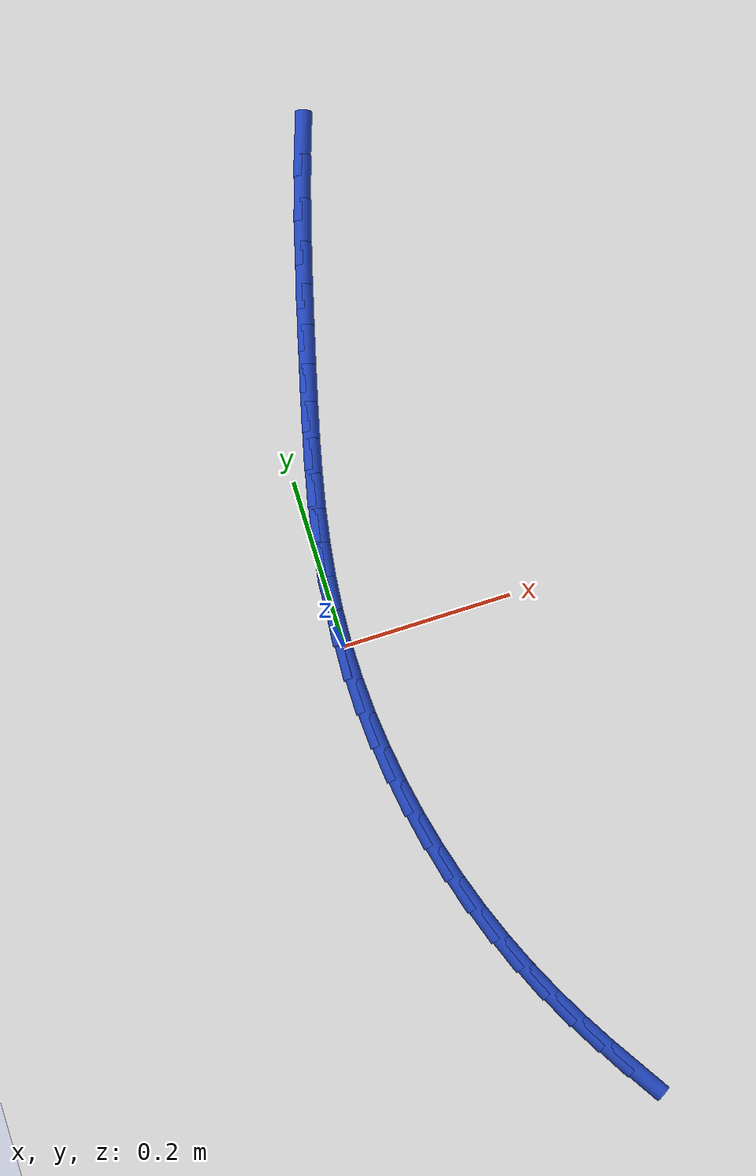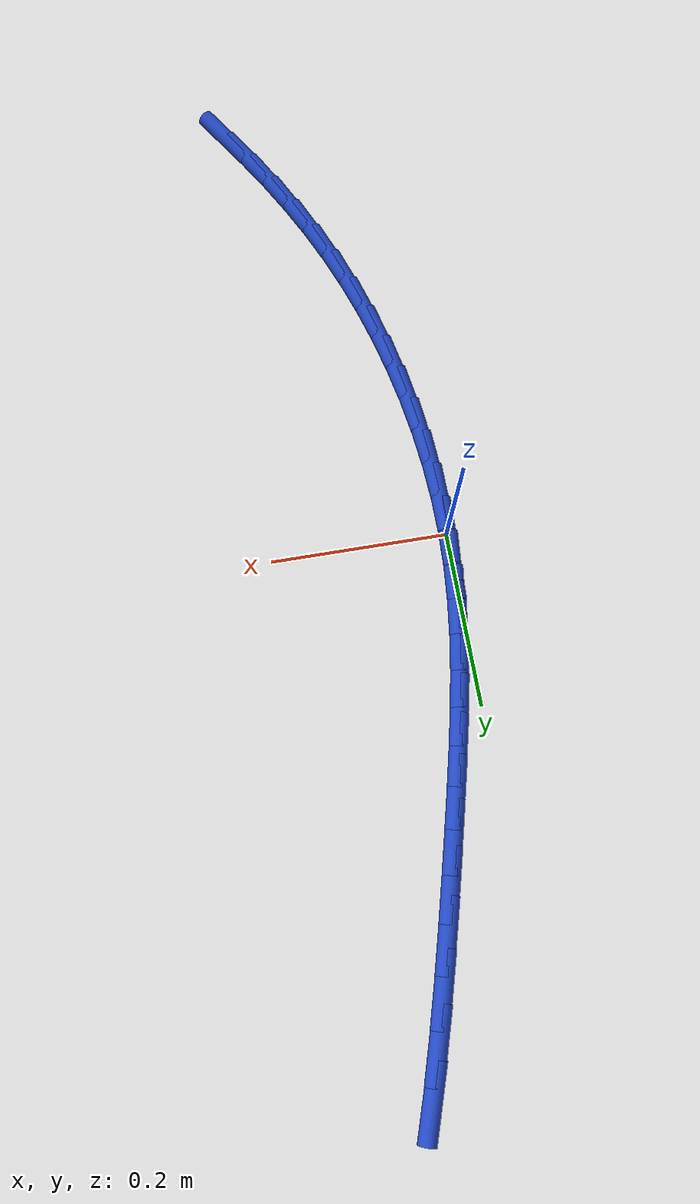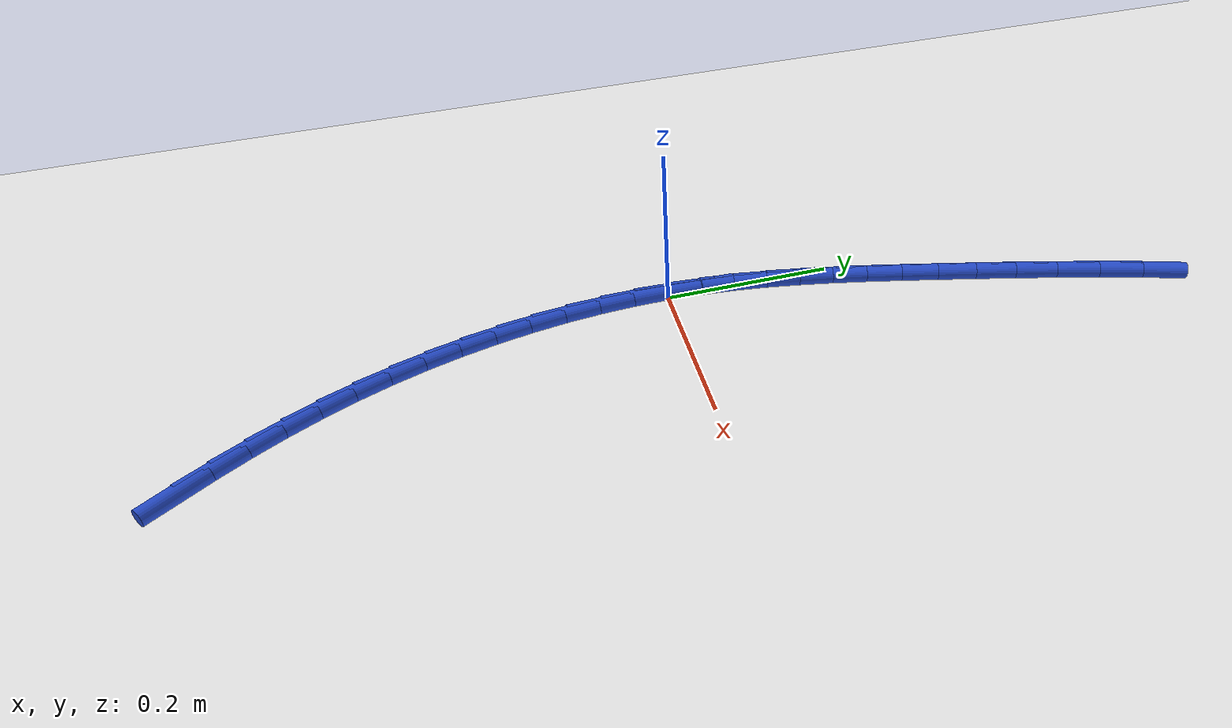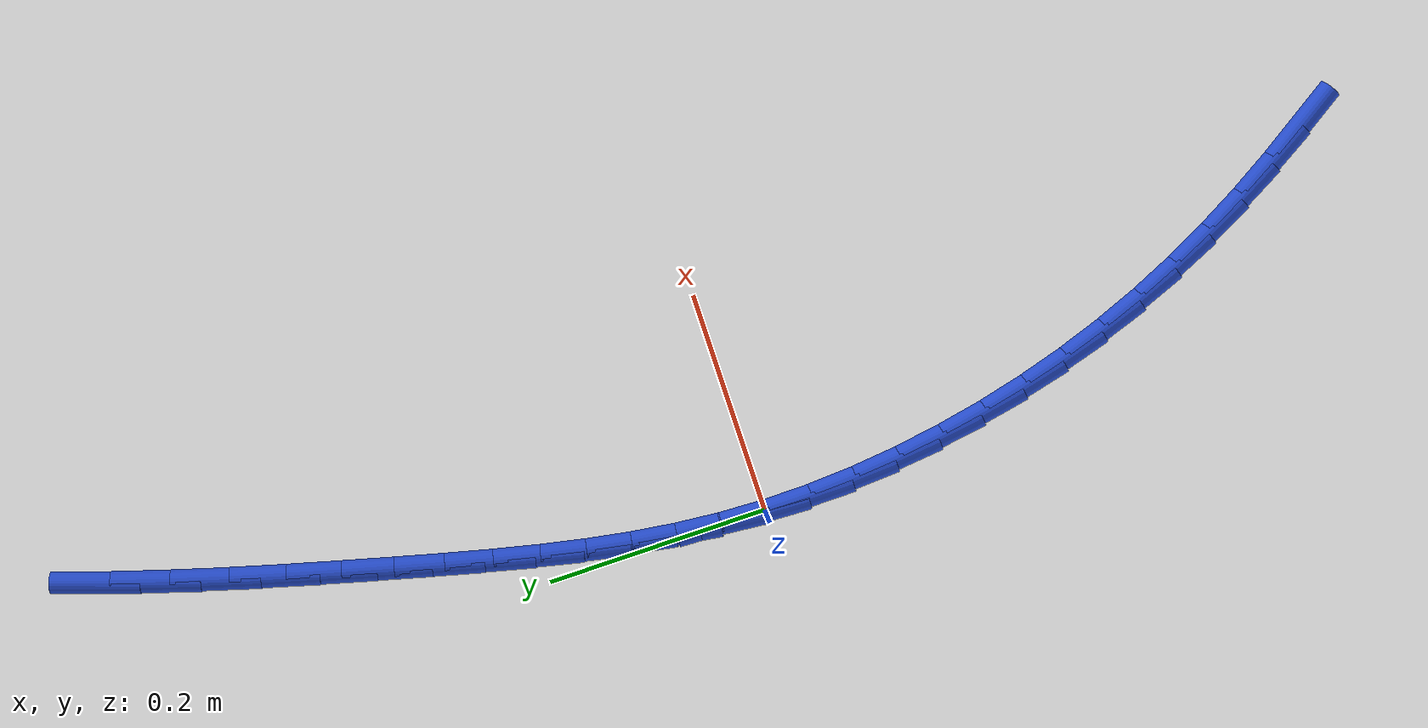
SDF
<sdf version="1.6">
 <world name="default">
  <model name="ground_plane">
   <static>1</static>
   <link name="link">
    <collision name="collision">
     <geometry><plane><normal>0 0 1</normal><size>100 100</size></plane></geometry>
     <surface><friction><ode><mu>100</mu><mu2>50</mu2></ode></friction></surface>
    </collision>
    <visual name="visual">
     <cast_shadows>0</cast_shadows>
     <geometry><plane><normal>0 0 1</normal><size>100 100</size></plane></geometry>
     <material>
      <script><uri>file://media/materials/scripts/gazebo.material</uri><name>Gazebo/WhiteGlow</name></script>
     </material>
    </visual>
   </link>
  </model>
  <model name="line">
   <link name="link_0">
    <pose>-1.734723475976807e-18 -4.85722573273506e-17 0.01 0 1.57 1.528370388708105</pose>
    <collision name="collision">
     <geometry><cylinder><radius>0.01</radius><length>0.08</length></cylinder></geometry>
    </collision>
    <visual name="visual">
     <material>
      <script><name>Gazebo/Blue</name><uri>file://media/materials/scripts/gazebo.material</uri></script>
     </material>
     <geometry><cylinder><radius>0.01</radius><length>0.08</length></cylinder></geometry>
    </visual>
   </link>
   <link name="link_1">
    <pose>0.00172003753674495 0.040517793847105354 0.01 0 1.57 1.480477401472173</pose>
    <collision name="collision">
     <geometry><cylinder><radius>0.01</radius><length>0.08</length></cylinder></geometry>
    </collision>
    <visual name="visual">
     <material>
      <script><name>Gazebo/Blue</name><uri>file://media/materials/scripts/gazebo.material</uri></script>
     </material>
     <geometry><cylinder><radius>0.01</radius><length>0.08</length></cylinder></geometry>
    </visual>
   </link>
   <link name="link_2">
    <pose>0.0053483399748782134 0.08058061663351242 0.01 0 1.57 1.4373348506060561</pose>
    <collision name="collision">
     <geometry><cylinder><radius>0.01</radius><length>0.08</length></cylinder></geometry>
    </collision>
    <visual name="visual">
     <material>
      <script><name>Gazebo/Blue</name><uri>file://media/materials/scripts/gazebo.material</uri></script>
     </material>
     <geometry><cylinder><radius>0.01</radius><length>0.08</length></cylinder></geometry>
    </visual>
   </link>
   <link name="link_3">
    <pose>0.010715270375678139 0.1205549032725496 0.01 0 1.57 1.4001602886996463</pose>
    <collision name="collision">
     <geometry><cylinder><radius>0.01</radius><length>0.08</length></cylinder></geometry>
    </collision>
    <visual name="visual">
     <material>
      <script><name>Gazebo/Blue</name><uri>file://media/materials/scripts/gazebo.material</uri></script>
     </material>
     <geometry><cylinder><radius>0.01</radius><length>0.08</length></cylinder></geometry>
    </visual>
   </link>
   <link name="link_4">
    <pose>0.01765119180042307 0.1608070886775455 0.01 0 1.57 1.3697363426582096</pose>
    <collision name="collision">
     <geometry><cylinder><radius>0.01</radius><length>0.08</length></cylinder></geometry>
    </collision>
    <visual name="visual">
     <material>
      <script><name>Gazebo/Blue</name><uri>file://media/materials/scripts/gazebo.material</uri></script>
     </material>
     <geometry><cylinder><radius>0.01</radius><length>0.08</length></cylinder></geometry>
    </visual>
   </link>
   <link name="link_5">
    <pose>0.025986467310391337 0.2017036077618285 0.01 0 1.57 1.3463984910136473</pose>
    <collision name="collision">
     <geometry><cylinder><radius>0.01</radius><length>0.08</length></cylinder></geometry>
    </collision>
    <visual name="visual">
     <material>
      <script><name>Gazebo/Blue</name><uri>file://media/materials/scripts/gazebo.material</uri></script>
     </material>
     <geometry><cylinder><radius>0.01</radius><length>0.08</length></cylinder></geometry>
    </visual>
   </link>
   <link name="link_6">
    <pose>0.035551459966861286 0.2436108954387271 0.01 0 1.57 1.3300850885852846</pose>
    <collision name="collision">
     <geometry><cylinder><radius>0.01</radius><length>0.08</length></cylinder></geometry>
    </collision>
    <visual name="visual">
     <material>
      <script><name>Gazebo/Blue</name><uri>file://media/materials/scripts/gazebo.material</uri></script>
     </material>
     <geometry><cylinder><radius>0.01</radius><length>0.08</length></cylinder></geometry>
    </visual>
   </link>
   <link name="link_7">
    <pose>0.04617653283111127 0.28689538662156994 0.01 0 1.57 1.3204221853887352</pose>
    <collision name="collision">
     <geometry><cylinder><radius>0.01</radius><length>0.08</length></cylinder></geometry>
    </collision>
    <visual name="visual">
     <material>
      <script><name>Gazebo/Blue</name><uri>file://media/materials/scripts/gazebo.material</uri></script>
     </material>
     <geometry><cylinder><radius>0.01</radius><length>0.08</length></cylinder></geometry>
    </visual>
   </link>
   <link name="link_8">
    <pose>0.05769204896441961 0.3319235162236853 0.01 0 1.57 1.3160238211613218</pose>
    <collision name="collision">
     <geometry><cylinder><radius>0.01</radius><length>0.08</length></cylinder></geometry>
    </collision>
    <visual name="visual">
     <material>
      <script><name>Gazebo/Blue</name><uri>file://media/materials/scripts/gazebo.material</uri></script>
     </material>
     <geometry><cylinder><radius>0.01</radius><length>0.08</length></cylinder></geometry>
    </visual>
   </link>
   <link name="link_9">
    <pose>0.06994969291257157 0.378990127860714 0.01 0 1.57 1.3102897392908057</pose>
    <collision name="collision">
     <geometry><cylinder><radius>0.01</radius><length>0.08</length></cylinder></geometry>
    </collision>
    <visual name="visual">
     <material>
      <script><name>Gazebo/Blue</name><uri>file://media/materials/scripts/gazebo.material</uri></script>
     </material>
     <geometry><cylinder><radius>0.01</radius><length>0.08</length></cylinder></geometry>
    </visual>
   </link>
   <link name="link_10">
    <pose>0.08296831745633551 0.4278287631962327 0.01 0 1.57 1.3004733944327602</pose>
    <collision name="collision">
     <geometry><cylinder><radius>0.01</radius><length>0.08</length></cylinder></geometry>
    </collision>
    <visual name="visual">
     <material>
      <script><name>Gazebo/Blue</name><uri>file://media/materials/scripts/gazebo.material</uri></script>
     </material>
     <geometry><cylinder><radius>0.01</radius><length>0.08</length></cylinder></geometry>
    </visual>
   </link>
   <link name="link_11">
    <pose>0.09684562465601698 0.47790821111630843 0.01 0 1.57 1.2866186862908935</pose>
    <collision name="collision">
     <geometry><cylinder><radius>0.01</radius><length>0.08</length></cylinder></geometry>
    </collision>
    <visual name="visual">
     <material>
      <script><name>Gazebo/Blue</name><uri>file://media/materials/scripts/gazebo.material</uri></script>
     </material>
     <geometry><cylinder><radius>0.01</radius><length>0.08</length></cylinder></geometry>
    </visual>
   </link>
   <link name="link_12">
    <pose>0.11167978077608409 0.5286957018454448 0.01 0 1.57 1.2685675212239707</pose>
    <collision name="collision">
     <geometry><cylinder><radius>0.01</radius><length>0.08</length></cylinder></geometry>
    </collision>
    <visual name="visual">
     <material>
      <script><name>Gazebo/Blue</name><uri>file://media/materials/scripts/gazebo.material</uri></script>
     </material>
     <geometry><cylinder><radius>0.01</radius><length>0.08</length></cylinder></geometry>
    </visual>
   </link>
   <link name="link_13">
    <pose>0.127568952081005 0.5796584656081453 0.01 0 1.57 1.2459556664759364</pose>
    <collision name="collision">
     <geometry><cylinder><radius>0.01</radius><length>0.08</length></cylinder></geometry>
    </collision>
    <visual name="visual">
     <material>
      <script><name>Gazebo/Blue</name><uri>file://media/materials/scripts/gazebo.material</uri></script>
     </material>
     <geometry><cylinder><radius>0.01</radius><length>0.08</length></cylinder></geometry>
    </visual>
   </link>
   <link name="link_166">
    <pose>0.17278765813214683 -0.5573662762943857 0.01 0 1.57 -0.998845805385104</pose>
    <collision name="collision">
     <geometry><cylinder><radius>0.01</radius><length>0.08</length></cylinder></geometry>
    </collision>
    <visual name="visual">
     <material>
      <script><name>Gazebo/Blue</name><uri>file://media/materials/scripts/gazebo.material</uri></script>
     </material>
     <geometry><cylinder><radius>0.01</radius><length>0.08</length></cylinder></geometry>
    </visual>
   </link>
   <link name="link_167">
    <pose>0.14984369439331982 -0.5217237211053647 0.01 0 1.57 -1.0328026099819858</pose>
    <collision name="collision">
     <geometry><cylinder><radius>0.01</radius><length>0.08</length></cylinder></geometry>
    </collision>
    <visual name="visual">
     <material>
      <script><name>Gazebo/Blue</name><uri>file://media/materials/scripts/gazebo.material</uri></script>
     </material>
     <geometry><cylinder><radius>0.01</radius><length>0.08</length></cylinder></geometry>
    </visual>
   </link>
   <link name="link_168">
    <pose>0.12826615076910017 -0.48556260717387384 0.01 0 1.57 -1.0701027501707252</pose>
    <collision name="collision">
     <geometry><cylinder><radius>0.01</radius><length>0.08</length></cylinder></geometry>
    </collision>
    <visual name="visual">
     <material>
      <script><name>Gazebo/Blue</name><uri>file://media/materials/scripts/gazebo.material</uri></script>
     </material>
     <geometry><cylinder><radius>0.01</radius><length>0.08</length></cylinder></geometry>
    </visual>
   </link>
   <link name="link_169">
    <pose>0.10812887845180856 -0.44876226530600816 0.01 0 1.57 -1.1104976194288296</pose>
    <collision name="collision">
     <geometry><cylinder><radius>0.01</radius><length>0.08</length></cylinder></geometry>
    </collision>
    <visual name="visual">
     <material>
      <script><name>Gazebo/Blue</name><uri>file://media/materials/scripts/gazebo.material</uri></script>
     </material>
     <geometry><cylinder><radius>0.01</radius><length>0.08</length></cylinder></geometry>
    </visual>
   </link>
   <link name="link_170">
    <pose>0.08950572863376506 -0.4112020263078616 0.01 0 1.57 -1.1536505468433074</pose>
    <collision name="collision">
     <geometry><cylinder><radius>0.01</radius><length>0.08</length></cylinder></geometry>
    </collision>
    <visual name="visual">
     <material>
      <script><name>Gazebo/Blue</name><uri>file://media/materials/scripts/gazebo.material</uri></script>
     </material>
     <geometry><cylinder><radius>0.01</radius><length>0.08</length></cylinder></geometry>
    </visual>
   </link>
   <link name="link_171">
    <pose>0.07247055250729091 -0.3727612209855305 0.01 0 1.57 -1.1991328929459468</pose>
    <collision name="collision">
     <geometry><cylinder><radius>0.01</radius><length>0.08</length></cylinder></geometry>
    </collision>
    <visual name="visual">
     <material>
      <script><name>Gazebo/Blue</name><uri>file://media/materials/scripts/gazebo.material</uri></script>
     </material>
     <geometry><cylinder><radius>0.01</radius><length>0.08</length></cylinder></geometry>
    </visual>
   </link>
   <link name="link_172">
    <pose>0.0570971488340753 -0.33331979363286135 0.01 0 1.57 -1.245473615800154</pose>
    <collision name="collision">
     <geometry><cylinder><radius>0.01</radius><length>0.08</length></cylinder></geometry>
    </collision>
    <visual name="visual">
     <material>
      <script><name>Gazebo/Blue</name><uri>file://media/materials/scripts/gazebo.material</uri></script>
     </material>
     <geometry><cylinder><radius>0.01</radius><length>0.08</length></cylinder></geometry>
    </visual>
   </link>
   <link name="link_173">
    <pose>0.043450410558475955 -0.29286189499245974 0.01 0 1.57 -1.2906419546688646</pose>
    <collision name="collision">
     <geometry><cylinder><radius>0.01</radius><length>0.08</length></cylinder></geometry>
    </collision>
    <visual name="visual">
     <material>
      <script><name>Gazebo/Blue</name><uri>file://media/materials/scripts/gazebo.material</uri></script>
     </material>
     <geometry><cylinder><radius>0.01</radius><length>0.08</length></cylinder></geometry>
    </visual>
   </link>
   <link name="link_174">
    <pose>0.0315763494153686 -0.25159260373696507 0.01 0 1.57 -1.3349260501769045</pose>
    <collision name="collision">
     <geometry><cylinder><radius>0.01</radius><length>0.08</length></cylinder></geometry>
    </collision>
    <visual name="visual">
     <material>
      <script><name>Gazebo/Blue</name><uri>file://media/materials/scripts/gazebo.material</uri></script>
     </material>
     <geometry><cylinder><radius>0.01</radius><length>0.08</length></cylinder></geometry>
    </visual>
   </link>
   <link name="link_175">
    <pose>0.021518568934412934 -0.2097451768076801 0.01 0 1.57 -1.378889064522511</pose>
    <collision name="collision">
     <geometry><cylinder><radius>0.01</radius><length>0.08</length></cylinder></geometry>
    </collision>
    <visual name="visual">
     <material>
      <script><name>Gazebo/Blue</name><uri>file://media/materials/scripts/gazebo.material</uri></script>
     </material>
     <geometry><cylinder><radius>0.01</radius><length>0.08</length></cylinder></geometry>
    </visual>
   </link>
   <link name="link_176">
    <pose>0.013320672645268537 -0.1675528711459068 0.01 0 1.57 -1.4230897962535616</pose>
    <collision name="collision">
     <geometry><cylinder><radius>0.01</radius><length>0.08</length></cylinder></geometry>
    </collision>
    <visual name="visual">
     <material>
      <script><name>Gazebo/Blue</name><uri>file://media/materials/scripts/gazebo.material</uri></script>
     </material>
     <geometry><cylinder><radius>0.01</radius><length>0.08</length></cylinder></geometry>
    </visual>
   </link>
   <link name="link_177">
    <pose>0.0070262640775954534 -0.12524894369294992 0.01 0 1.57 -1.4680986572761336</pose>
    <collision name="collision">
     <geometry><cylinder><radius>0.01</radius><length>0.08</length></cylinder></geometry>
    </collision>
    <visual name="visual">
     <material>
      <script><name>Gazebo/Blue</name><uri>file://media/materials/scripts/gazebo.material</uri></script>
     </material>
     <geometry><cylinder><radius>0.01</radius><length>0.08</length></cylinder></geometry>
    </visual>
   </link>
   <link name="link_178">
    <pose>0.0026789467610531924 -0.08306665139011124 0.01 0 1.57 -1.5145142327414138</pose>
    <collision name="collision">
     <geometry><cylinder><radius>0.01</radius><length>0.08</length></cylinder></geometry>
    </collision>
    <visual name="visual">
     <material>
      <script><name>Gazebo/Blue</name><uri>file://media/materials/scripts/gazebo.material</uri></script>
     </material>
     <geometry><cylinder><radius>0.01</radius><length>0.08</length></cylinder></geometry>
    </visual>
   </link>
   <link name="link_179">
    <pose>0.00032232422530147856 -0.04123925117869376 0.01 0 1.57 -1.5629805286700231</pose>
    <collision name="collision">
     <geometry><cylinder><radius>0.01</radius><length>0.08</length></cylinder></geometry>
    </collision>
    <visual name="visual">
     <material>
      <script><name>Gazebo/Blue</name><uri>file://media/materials/scripts/gazebo.material</uri></script>
     </material>
     <geometry><cylinder><radius>0.01</radius><length>0.08</length></cylinder></geometry>
    </visual>
   </link>
   <link name="link_180">
    <pose>1.0408340855860843e-17 -2.636779683484747e-16 0.01 0 1.57 1.5273879067173797</pose>
    <collision name="collision">
     <geometry><cylinder><radius>0.01</radius><length>0.08</length></cylinder></geometry>
    </collision>
    <visual name="visual">
     <material>
      <script><name>Gazebo/Blue</name><uri>file://media/materials/scripts/gazebo.material</uri></script>
     </material>
     <geometry><cylinder><radius>0.01</radius><length>0.08</length></cylinder></geometry>
    </visual>
   </link>
   <link name="link_181">
    <pose>0.0017555776148085005 0.04041784520466642 0.01 0 1.57 1.5273879067173792</pose>
    <collision name="collision">
     <geometry><cylinder><radius>0.01</radius><length>0.08</length></cylinder></geometry>
    </collision>
    <visual name="visual">
     <material>
      <script><name>Gazebo/Blue</name><uri>file://media/materials/scripts/gazebo.material</uri></script>
     </material>
     <geometry><cylinder><radius>0.01</radius><length>0.08</length></cylinder></geometry>
    </visual>
   </link>
  </model>
 </world>
</sdf>
